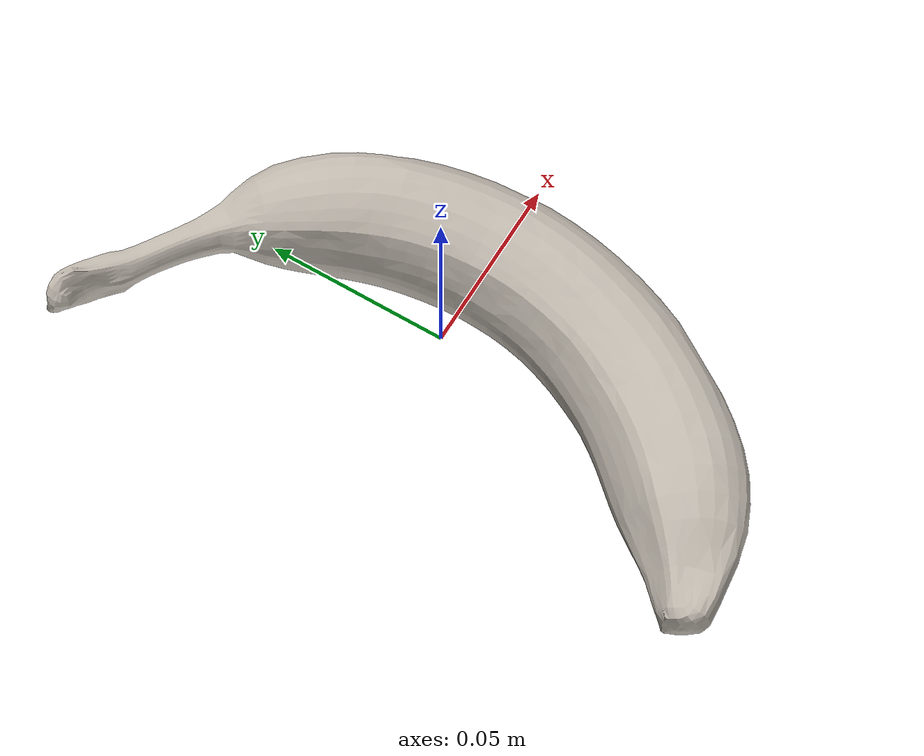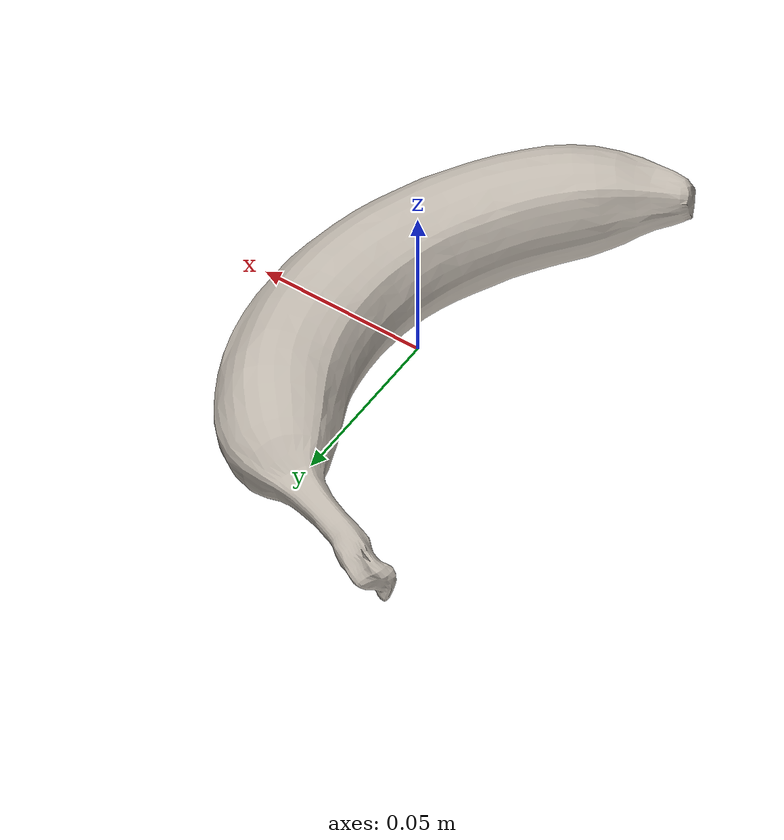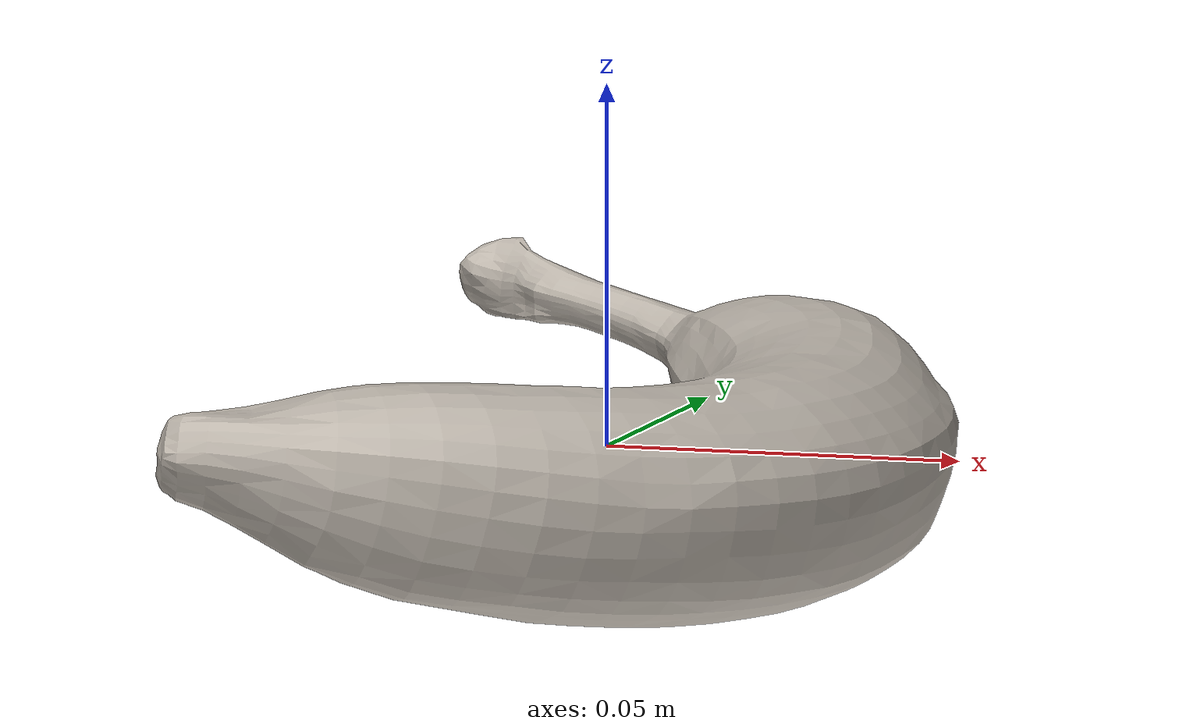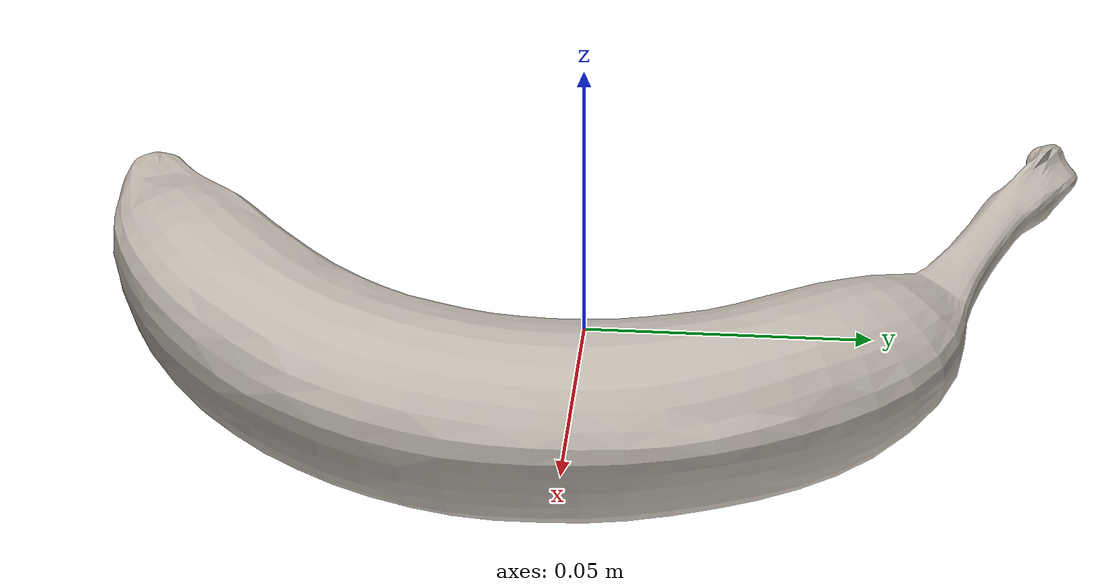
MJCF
<mujoco model="banana_20">
  <asset>
    <mesh file="visual/model_normalized_0.obj" name="model_normalized_0_vis" scale="0.16999999999999998 0.16999999999999998 0.16999999999999998" refquat="-7.850462293418875e-17 0.9999999999999998 5.551115123125783e-17 7.850462293418875e-17"/>
    <mesh file="collision/model_normalized_collision_22.obj" name="model_normalized_collision_22._coll" scale="0.16999999999999998 0.16999999999999998 0.16999999999999998" refquat="-7.850462293418875e-17 0.9999999999999998 5.551115123125783e-17 7.850462293418875e-17"/>
    <mesh file="collision/model_normalized_collision_23.obj" name="model_normalized_collision_23._coll" scale="0.16999999999999998 0.16999999999999998 0.16999999999999998" refquat="-7.850462293418875e-17 0.9999999999999998 5.551115123125783e-17 7.850462293418875e-17"/>
    <mesh file="collision/model_normalized_collision_21.obj" name="model_normalized_collision_21._coll" scale="0.16999999999999998 0.16999999999999998 0.16999999999999998" refquat="-7.850462293418875e-17 0.9999999999999998 5.551115123125783e-17 7.850462293418875e-17"/>
    <mesh file="collision/model_normalized_collision_20.obj" name="model_normalized_collision_20._coll" scale="0.16999999999999998 0.16999999999999998 0.16999999999999998" refquat="-7.850462293418875e-17 0.9999999999999998 5.551115123125783e-17 7.850462293418875e-17"/>
    <mesh file="collision/model_normalized_collision_24.obj" name="model_normalized_collision_24._coll" scale="0.16999999999999998 0.16999999999999998 0.16999999999999998" refquat="-7.850462293418875e-17 0.9999999999999998 5.551115123125783e-17 7.850462293418875e-17"/>
    <mesh file="collision/model_normalized_collision_30.obj" name="model_normalized_collision_30._coll" scale="0.16999999999999998 0.16999999999999998 0.16999999999999998" refquat="-7.850462293418875e-17 0.9999999999999998 5.551115123125783e-17 7.850462293418875e-17"/>
    <mesh file="collision/model_normalized_collision_18.obj" name="model_normalized_collision_18._coll" scale="0.16999999999999998 0.16999999999999998 0.16999999999999998" refquat="-7.850462293418875e-17 0.9999999999999998 5.551115123125783e-17 7.850462293418875e-17"/>
    <mesh file="collision/model_normalized_collision_19.obj" name="model_normalized_collision_19._coll" scale="0.16999999999999998 0.16999999999999998 0.16999999999999998" refquat="-7.850462293418875e-17 0.9999999999999998 5.551115123125783e-17 7.850462293418875e-17"/>
    <mesh file="collision/model_normalized_collision_31.obj" name="model_normalized_collision_31._coll" scale="0.16999999999999998 0.16999999999999998 0.16999999999999998" refquat="-7.850462293418875e-17 0.9999999999999998 5.551115123125783e-17 7.850462293418875e-17"/>
    <mesh file="collision/model_normalized_collision_25.obj" name="model_normalized_collision_25._coll" scale="0.16999999999999998 0.16999999999999998 0.16999999999999998" refquat="-7.850462293418875e-17 0.9999999999999998 5.551115123125783e-17 7.850462293418875e-17"/>
    <mesh file="collision/model_normalized_collision_27.obj" name="model_normalized_collision_27._coll" scale="0.16999999999999998 0.16999999999999998 0.16999999999999998" refquat="-7.850462293418875e-17 0.9999999999999998 5.551115123125783e-17 7.850462293418875e-17"/>
    <mesh file="collision/model_normalized_collision_26.obj" name="model_normalized_collision_26._coll" scale="0.16999999999999998 0.16999999999999998 0.16999999999999998" refquat="-7.850462293418875e-17 0.9999999999999998 5.551115123125783e-17 7.850462293418875e-17"/>
    <mesh file="collision/model_normalized_collision_9.obj" name="model_normalized_collision_9._coll" scale="0.16999999999999998 0.16999999999999998 0.16999999999999998" refquat="-7.850462293418875e-17 0.9999999999999998 5.551115123125783e-17 7.850462293418875e-17"/>
    <mesh file="collision/model_normalized_collision_8.obj" name="model_normalized_collision_8._coll" scale="0.16999999999999998 0.16999999999999998 0.16999999999999998" refquat="-7.850462293418875e-17 0.9999999999999998 5.551115123125783e-17 7.850462293418875e-17"/>
    <mesh file="collision/model_normalized_collision_6.obj" name="model_normalized_collision_6._coll" scale="0.16999999999999998 0.16999999999999998 0.16999999999999998" refquat="-7.850462293418875e-17 0.9999999999999998 5.551115123125783e-17 7.850462293418875e-17"/>
    <mesh file="collision/model_normalized_collision_7.obj" name="model_normalized_collision_7._coll" scale="0.16999999999999998 0.16999999999999998 0.16999999999999998" refquat="-7.850462293418875e-17 0.9999999999999998 5.551115123125783e-17 7.850462293418875e-17"/>
    <mesh file="collision/model_normalized_collision_5.obj" name="model_normalized_collision_5._coll" scale="0.16999999999999998 0.16999999999999998 0.16999999999999998" refquat="-7.850462293418875e-17 0.9999999999999998 5.551115123125783e-17 7.850462293418875e-17"/>
    <mesh file="collision/model_normalized_collision_4.obj" name="model_normalized_collision_4._coll" scale="0.16999999999999998 0.16999999999999998 0.16999999999999998" refquat="-7.850462293418875e-17 0.9999999999999998 5.551115123125783e-17 7.850462293418875e-17"/>
    <mesh file="collision/model_normalized_collision_0.obj" name="model_normalized_collision_0._coll" scale="0.16999999999999998 0.16999999999999998 0.16999999999999998" refquat="-7.850462293418875e-17 0.9999999999999998 5.551115123125783e-17 7.850462293418875e-17"/>
    <mesh file="collision/model_normalized_collision_1.obj" name="model_normalized_collision_1._coll" scale="0.16999999999999998 0.16999999999999998 0.16999999999999998" refquat="-7.850462293418875e-17 0.9999999999999998 5.551115123125783e-17 7.850462293418875e-17"/>
    <mesh file="collision/model_normalized_collision_3.obj" name="model_normalized_collision_3._coll" scale="0.16999999999999998 0.16999999999999998 0.16999999999999998" refquat="-7.850462293418875e-17 0.9999999999999998 5.551115123125783e-17 7.850462293418875e-17"/>
    <mesh file="collision/model_normalized_collision_2.obj" name="model_normalized_collision_2._coll" scale="0.16999999999999998 0.16999999999999998 0.16999999999999998" refquat="-7.850462293418875e-17 0.9999999999999998 5.551115123125783e-17 7.850462293418875e-17"/>
    <mesh file="collision/model_normalized_collision_17.obj" name="model_normalized_collision_17._coll" scale="0.16999999999999998 0.16999999999999998 0.16999999999999998" refquat="-7.850462293418875e-17 0.9999999999999998 5.551115123125783e-17 7.850462293418875e-17"/>
    <mesh file="collision/model_normalized_collision_16.obj" name="model_normalized_collision_16._coll" scale="0.16999999999999998 0.16999999999999998 0.16999999999999998" refquat="-7.850462293418875e-17 0.9999999999999998 5.551115123125783e-17 7.850462293418875e-17"/>
    <mesh file="collision/model_normalized_collision_28.obj" name="model_normalized_collision_28._coll" scale="0.16999999999999998 0.16999999999999998 0.16999999999999998" refquat="-7.850462293418875e-17 0.9999999999999998 5.551115123125783e-17 7.850462293418875e-17"/>
    <mesh file="collision/model_normalized_collision_14.obj" name="model_normalized_collision_14._coll" scale="0.16999999999999998 0.16999999999999998 0.16999999999999998" refquat="-7.850462293418875e-17 0.9999999999999998 5.551115123125783e-17 7.850462293418875e-17"/>
    <mesh file="collision/model_normalized_collision_15.obj" name="model_normalized_collision_15._coll" scale="0.16999999999999998 0.16999999999999998 0.16999999999999998" refquat="-7.850462293418875e-17 0.9999999999999998 5.551115123125783e-17 7.850462293418875e-17"/>
    <mesh file="collision/model_normalized_collision_29.obj" name="model_normalized_collision_29._coll" scale="0.16999999999999998 0.16999999999999998 0.16999999999999998" refquat="-7.850462293418875e-17 0.9999999999999998 5.551115123125783e-17 7.850462293418875e-17"/>
    <mesh file="collision/model_normalized_collision_11.obj" name="model_normalized_collision_11._coll" scale="0.16999999999999998 0.16999999999999998 0.16999999999999998" refquat="-7.850462293418875e-17 0.9999999999999998 5.551115123125783e-17 7.850462293418875e-17"/>
    <mesh file="collision/model_normalized_collision_10.obj" name="model_normalized_collision_10._coll" scale="0.16999999999999998 0.16999999999999998 0.16999999999999998" refquat="-7.850462293418875e-17 0.9999999999999998 5.551115123125783e-17 7.850462293418875e-17"/>
    <mesh file="collision/model_normalized_collision_12.obj" name="model_normalized_collision_12._coll" scale="0.16999999999999998 0.16999999999999998 0.16999999999999998" refquat="-7.850462293418875e-17 0.9999999999999998 5.551115123125783e-17 7.850462293418875e-17"/>
    <mesh file="collision/model_normalized_collision_13.obj" name="model_normalized_collision_13._coll" scale="0.16999999999999998 0.16999999999999998 0.16999999999999998" refquat="-7.850462293418875e-17 0.9999999999999998 5.551115123125783e-17 7.850462293418875e-17"/>
    <texture type="2d" name="image0" file="visual/image0.png"/>
    <material name="DefaultMaterial.003" texture="image0" specular="0.5" shininess="0.12948527999999998"/>
  </asset>
  <worldbody>
  <body>
      <body name="object">
        <geom solimp="0.998 0.998 0.001" solref="0.001 1" density="100" friction="0.95 0.3 0.1" type="mesh" mesh="model_normalized_0_vis" conaffinity="0" contype="0" group="1" material="DefaultMaterial.003"/>
        <geom solimp="0.998 0.998 0.001" solref="0.001 1" density="100" friction="0.95 0.3 0.1" type="mesh" mesh="model_normalized_collision_22._coll" group="0" rgba="0.8 0.8 0.8 0.0"/>
        <geom solimp="0.998 0.998 0.001" solref="0.001 1" density="100" friction="0.95 0.3 0.1" type="mesh" mesh="model_normalized_collision_23._coll" group="0" rgba="0.8 0.8 0.8 0.0"/>
        <geom solimp="0.998 0.998 0.001" solref="0.001 1" density="100" friction="0.95 0.3 0.1" type="mesh" mesh="model_normalized_collision_21._coll" group="0" rgba="0.8 0.8 0.8 0.0"/>
        <geom solimp="0.998 0.998 0.001" solref="0.001 1" density="100" friction="0.95 0.3 0.1" type="mesh" mesh="model_normalized_collision_20._coll" group="0" rgba="0.8 0.8 0.8 0.0"/>
        <geom solimp="0.998 0.998 0.001" solref="0.001 1" density="100" friction="0.95 0.3 0.1" type="mesh" mesh="model_normalized_collision_24._coll" group="0" rgba="0.8 0.8 0.8 0.0"/>
        <geom solimp="0.998 0.998 0.001" solref="0.001 1" density="100" friction="0.95 0.3 0.1" type="mesh" mesh="model_normalized_collision_30._coll" group="0" rgba="0.8 0.8 0.8 0.0"/>
        <geom solimp="0.998 0.998 0.001" solref="0.001 1" density="100" friction="0.95 0.3 0.1" type="mesh" mesh="model_normalized_collision_18._coll" group="0" rgba="0.8 0.8 0.8 0.0"/>
        <geom solimp="0.998 0.998 0.001" solref="0.001 1" density="100" friction="0.95 0.3 0.1" type="mesh" mesh="model_normalized_collision_19._coll" group="0" rgba="0.8 0.8 0.8 0.0"/>
        <geom solimp="0.998 0.998 0.001" solref="0.001 1" density="100" friction="0.95 0.3 0.1" type="mesh" mesh="model_normalized_collision_31._coll" group="0" rgba="0.8 0.8 0.8 0.0"/>
        <geom solimp="0.998 0.998 0.001" solref="0.001 1" density="100" friction="0.95 0.3 0.1" type="mesh" mesh="model_normalized_collision_25._coll" group="0" rgba="0.8 0.8 0.8 0.0"/>
        <geom solimp="0.998 0.998 0.001" solref="0.001 1" density="100" friction="0.95 0.3 0.1" type="mesh" mesh="model_normalized_collision_27._coll" group="0" rgba="0.8 0.8 0.8 0.0"/>
        <geom solimp="0.998 0.998 0.001" solref="0.001 1" density="100" friction="0.95 0.3 0.1" type="mesh" mesh="model_normalized_collision_26._coll" group="0" rgba="0.8 0.8 0.8 0.0"/>
        <geom solimp="0.998 0.998 0.001" solref="0.001 1" density="100" friction="0.95 0.3 0.1" type="mesh" mesh="model_normalized_collision_9._coll" group="0" rgba="0.8 0.8 0.8 0.0"/>
        <geom solimp="0.998 0.998 0.001" solref="0.001 1" density="100" friction="0.95 0.3 0.1" type="mesh" mesh="model_normalized_collision_8._coll" group="0" rgba="0.8 0.8 0.8 0.0"/>
        <geom solimp="0.998 0.998 0.001" solref="0.001 1" density="100" friction="0.95 0.3 0.1" type="mesh" mesh="model_normalized_collision_6._coll" group="0" rgba="0.8 0.8 0.8 0.0"/>
        <geom solimp="0.998 0.998 0.001" solref="0.001 1" density="100" friction="0.95 0.3 0.1" type="mesh" mesh="model_normalized_collision_7._coll" group="0" rgba="0.8 0.8 0.8 0.0"/>
        <geom solimp="0.998 0.998 0.001" solref="0.001 1" density="100" friction="0.95 0.3 0.1" type="mesh" mesh="model_normalized_collision_5._coll" group="0" rgba="0.8 0.8 0.8 0.0"/>
        <geom solimp="0.998 0.998 0.001" solref="0.001 1" density="100" friction="0.95 0.3 0.1" type="mesh" mesh="model_normalized_collision_4._coll" group="0" rgba="0.8 0.8 0.8 0.0"/>
        <geom solimp="0.998 0.998 0.001" solref="0.001 1" density="100" friction="0.95 0.3 0.1" type="mesh" mesh="model_normalized_collision_0._coll" group="0" rgba="0.8 0.8 0.8 0.0"/>
        <geom solimp="0.998 0.998 0.001" solref="0.001 1" density="100" friction="0.95 0.3 0.1" type="mesh" mesh="model_normalized_collision_1._coll" group="0" rgba="0.8 0.8 0.8 0.0"/>
        <geom solimp="0.998 0.998 0.001" solref="0.001 1" density="100" friction="0.95 0.3 0.1" type="mesh" mesh="model_normalized_collision_3._coll" group="0" rgba="0.8 0.8 0.8 0.0"/>
        <geom solimp="0.998 0.998 0.001" solref="0.001 1" density="100" friction="0.95 0.3 0.1" type="mesh" mesh="model_normalized_collision_2._coll" group="0" rgba="0.8 0.8 0.8 0.0"/>
        <geom solimp="0.998 0.998 0.001" solref="0.001 1" density="100" friction="0.95 0.3 0.1" type="mesh" mesh="model_normalized_collision_17._coll" group="0" rgba="0.8 0.8 0.8 0.0"/>
        <geom solimp="0.998 0.998 0.001" solref="0.001 1" density="100" friction="0.95 0.3 0.1" type="mesh" mesh="model_normalized_collision_16._coll" group="0" rgba="0.8 0.8 0.8 0.0"/>
        <geom solimp="0.998 0.998 0.001" solref="0.001 1" density="100" friction="0.95 0.3 0.1" type="mesh" mesh="model_normalized_collision_28._coll" group="0" rgba="0.8 0.8 0.8 0.0"/>
        <geom solimp="0.998 0.998 0.001" solref="0.001 1" density="100" friction="0.95 0.3 0.1" type="mesh" mesh="model_normalized_collision_14._coll" group="0" rgba="0.8 0.8 0.8 0.0"/>
        <geom solimp="0.998 0.998 0.001" solref="0.001 1" density="100" friction="0.95 0.3 0.1" type="mesh" mesh="model_normalized_collision_15._coll" group="0" rgba="0.8 0.8 0.8 0.0"/>
        <geom solimp="0.998 0.998 0.001" solref="0.001 1" density="100" friction="0.95 0.3 0.1" type="mesh" mesh="model_normalized_collision_29._coll" group="0" rgba="0.8 0.8 0.8 0.0"/>
        <geom solimp="0.998 0.998 0.001" solref="0.001 1" density="100" friction="0.95 0.3 0.1" type="mesh" mesh="model_normalized_collision_11._coll" group="0" rgba="0.8 0.8 0.8 0.0"/>
        <geom solimp="0.998 0.998 0.001" solref="0.001 1" density="100" friction="0.95 0.3 0.1" type="mesh" mesh="model_normalized_collision_10._coll" group="0" rgba="0.8 0.8 0.8 0.0"/>
        <geom solimp="0.998 0.998 0.001" solref="0.001 1" density="100" friction="0.95 0.3 0.1" type="mesh" mesh="model_normalized_collision_12._coll" group="0" rgba="0.8 0.8 0.8 0.0"/>
        <geom solimp="0.998 0.998 0.001" solref="0.001 1" density="100" friction="0.95 0.3 0.1" type="mesh" mesh="model_normalized_collision_13._coll" group="0" rgba="0.8 0.8 0.8 0.0"/>
      </body>
      <site rgba="0 0 0 0" size="0.005" pos="-7.059250000000572e-05 -2.565044694223167e-05 -0.017597932102162758" name="bottom_site"/>
      <site rgba="0 0 0 0" size="0.005" pos="-7.059250000000572e-05 -2.565044694223167e-05 0.018550919688557762" name="top_site"/>
      <site rgba="0 0 0 0" size="0.005" pos="0.045960044 0.08397354188957254 0.0004764937931975024" name="horizontal_radius_site"/>
    </body>
    </worldbody>
</mujoco>
